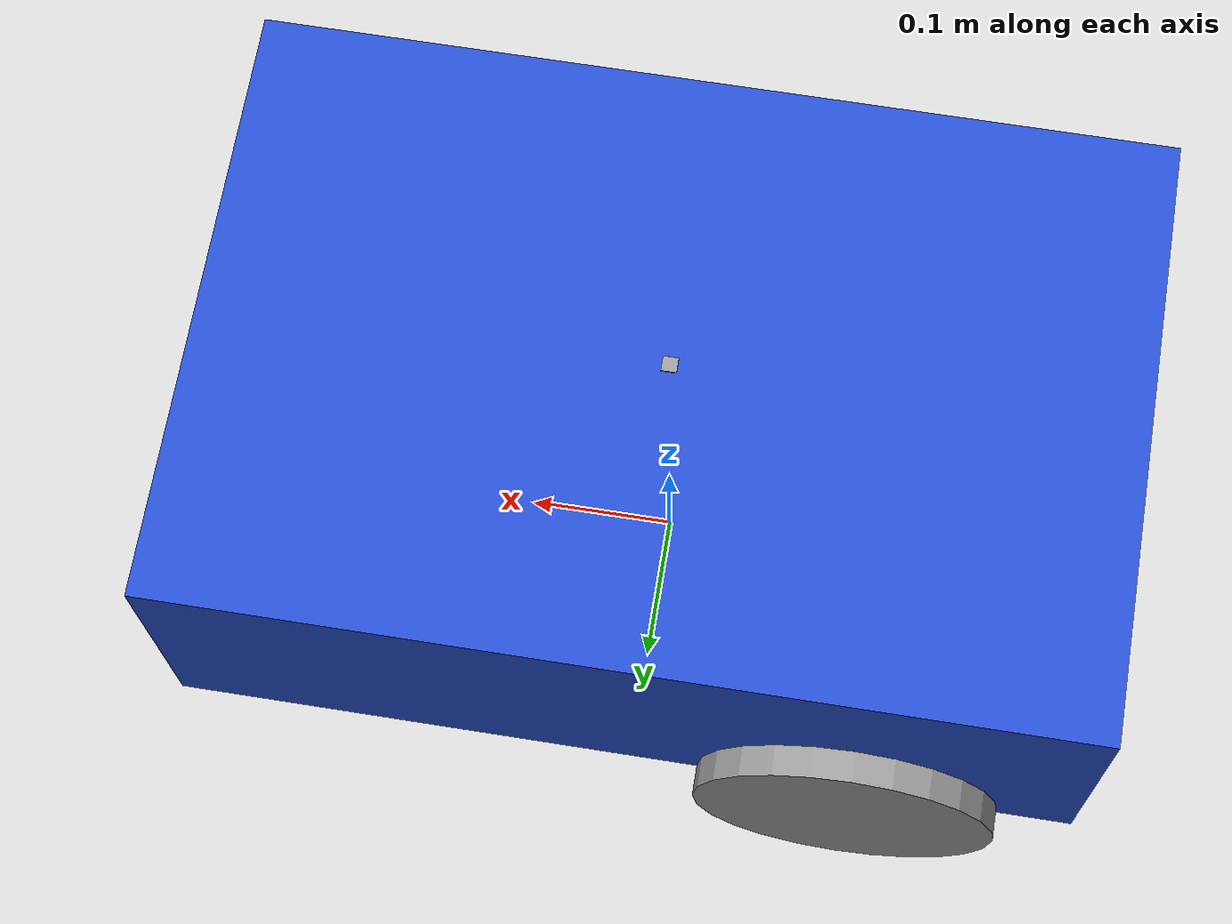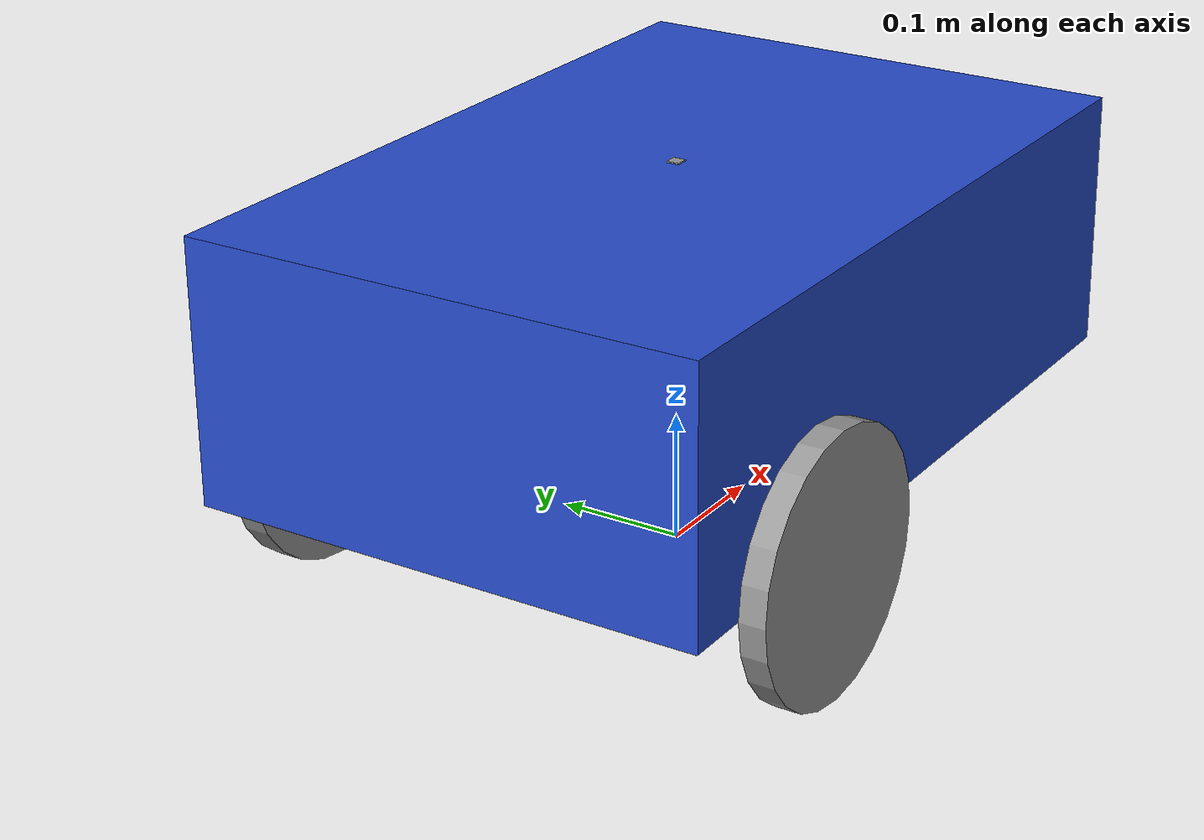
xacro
<?xml version="1.0"?>
<robot name="my_robo_v0" xmlns:xacro="https://www.ros.org/wiki/xacro">

    <xacro:include filename="materials.xacro" />
    <xacro:include filename="inertia_descriptions.xacro" />
    <xacro:include filename="ros2_hardwareinterface.xacro" />
    <xacro:include filename="imu_sensor.xacro" />

    <xacro:property name="box_len" value="0.6" />
    <xacro:property name="box_width" value="0.4" />
    <xacro:property name="box_height" value="0.2" />
    <xacro:property name="wheel_radius" value="0.1" />
    <xacro:property name="wheel_thickness" value="0.02" />

    <link name="base_footprint">
    </link>

    <link name="base_link">
        <visual>
            <geometry>
                <box size="${box_len} ${box_width} ${box_height}" />
            </geometry>
            <origin xyz="0 0 ${box_height/2}" rpy="0 0 0" />
            <material name="blue" />
        </visual>
        <collision>
            <geometry>
                <box size="${box_len} ${box_width} ${box_height}" />
            </geometry>
            <origin xyz="0 0 ${box_height/2}" rpy="0 0 0" />
        </collision>
        <xacro:box_inertia Mass="10.0" x="${box_len}" y="${box_width}" z="${box_height}" arr_xyz="0 0 ${box_height/2}" arr_rpy="0 0 0" />
    </link>

    <xacro:macro name="wheel" params="params">
        <link name="${params}">
            <visual>
                <geometry>
                    <cylinder radius="${wheel_radius}" length="${wheel_thickness}" />
                </geometry>
                <origin xyz="0 0 0" rpy="${pi/2} 0 0"/>
                <material name="grey"/>
            </visual>
            <collision>
                <geometry>
                    <sphere radius="${wheel_radius}"/>
                </geometry>
                <origin xyz="0 0 0" rpy="${pi/2} 0 0"/>
            </collision>
            <xacro:cylinder_inertia Mass="1.0" r="${wheel_radius}" h="${wheel_thickness}" arr_xyz="0 0 0" arr_rpy="${pi/2} 0 0"/>
        </link>
    </xacro:macro>

    <xacro:wheel params="right_wheel" />
    <xacro:wheel params="left_wheel" />

    <link name="caster_wheel">
        <visual>
            <geometry>
                <sphere radius="0.05"/>
            </geometry>
            <origin xyz="0 0 0" rpy="0 0 0"/>
            <material name="grey"/>
        </visual>
        <collision>
            <geometry>
                <sphere radius="0.05"/>
            </geometry>
            <origin xyz="0 0 0" rpy="0 0 0"/>
        </collision>
        <xacro:solid_sphere_inertia Mass="0.5" r="0.05" arr_xyz="0 0 0" arr_rpy="0 0 0"/>
    </link>

    <joint name="base_right_wheel_joint" type="continuous">
        <parent link="base_link"/>
        <child link="right_wheel"/>
        <origin xyz="${-box_len/4} ${-box_width/2 - wheel_thickness/2} 0" rpy="0 0 0"/>
        <axis xyz="0 1 0"/>
    </joint>

    <joint name="base_left_wheel_joint" type="continuous">
        <parent link="base_link"/>
        <child link="left_wheel"/>
        <origin xyz="${-box_len/4} ${box_width/2 + wheel_thickness/2} 0" rpy="0 0 0"/>
        <axis xyz="0 1 0"/>
    </joint>

    <joint name="base_caster_wheel_joint" type="fixed">
        <parent link="base_link"/>
        <child link="caster_wheel"/>
        <origin xyz="${box_len/4} 0 ${-wheel_radius/2}" rpy="0 0 0"/>
    </joint>

    <joint name="baseshadow_object_joint" type="fixed">
        <parent link="base_footprint"/>
        <child link="base_link"/>
        <origin xyz="0 0 ${box_height/2}" rpy="0 0 0"/>
    </joint>

</robot>

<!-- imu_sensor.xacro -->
<robot xmlns:xacro="http://www.ros.org/wiki/xacro">

    <xacro:property name="imu_length" value="0.01" />
    <xacro:property name="imu_width" value="0.01" />
    <xacro:property name="imu_height" value="0.001" />

    <link name="imu_link">
        <visual>
            <geometry>
                <box size="${imu_length} ${imu_width} ${imu_height}" />
            </geometry>
            <origin xyz="0 0 0" rpy="0 0 0"/>
            <material name="grey" />
        </visual>
        <collision>
            <geometry>
                <box size="${imu_length} ${imu_width} ${imu_height}" />
            </geometry>
            <origin xyz="0 0 0" rpy="0 0 0"/>
        </collision>
        <xacro:box_inertia Mass="0.01" x="${imu_length}" y="${imu_width}" z="${imu_height}" arr_xyz="0 0 0" arr_rpy="0 0 0"/>
    </link>

    <joint name="base_imu_joint" type="fixed">
        <parent link="base_link" />
        <child link="imu_link" />
        <origin xyz="0 0 ${0.2 + (imu_height) / 2.0}" rpy="0 0 0" />
    </joint>

</robot>
